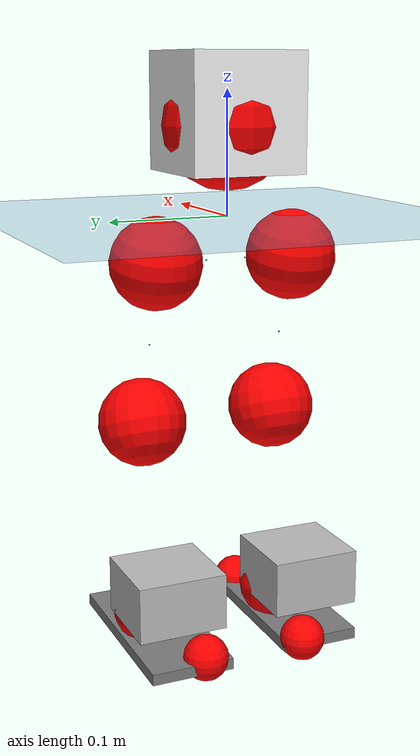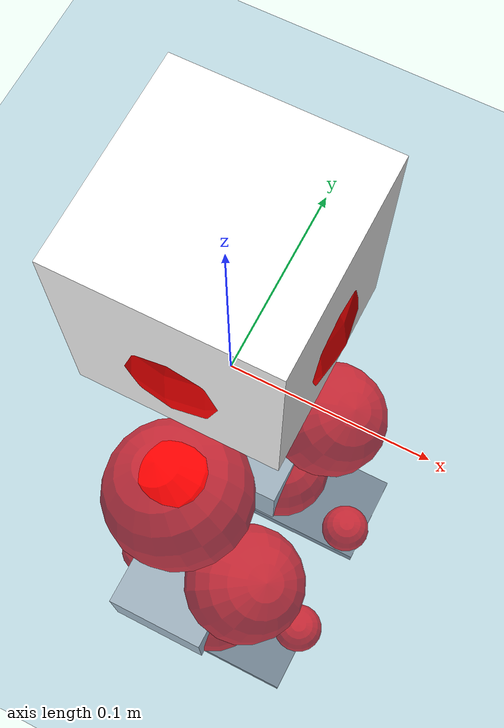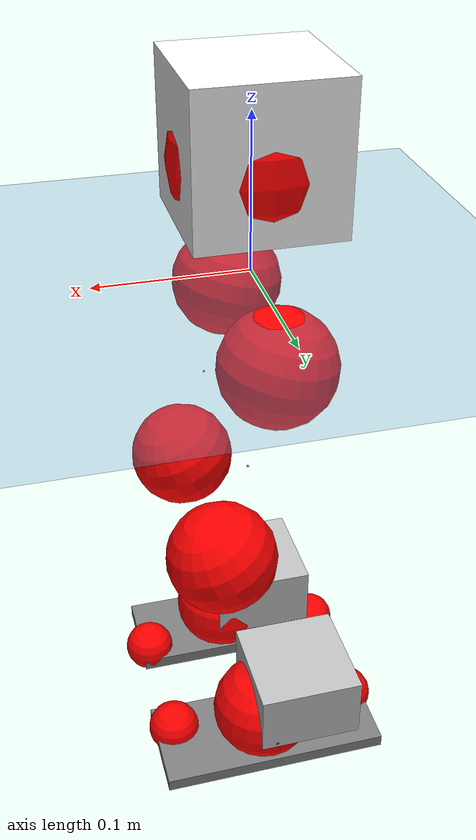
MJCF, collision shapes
<mujoco model="pi_12dof_release_v1">
  <compiler angle="radian" assetdir="assets" balanceinertia="true" inertiafromgeom="false"/>

  <option timestep="0.005" density="1.2" viscosity="2e-05"/>

  <size nkey="1"/>

  <visual>
    <quality shadowsize="8192"/>
    <map shadowclip="0.5"/>
  </visual>

  <default>
    <default class="/">
      <joint armature="0.01" damping="0.01" frictionloss="0.01"/>
      <geom contype="0" conaffinity="0" group="1" solref="-1000 -80"/>
      <site size="0.01 0.005 0.005" group="5"/>
      <general forcelimited="true" biastype="affine" gainprm="20" biasprm="0 -20 -0.5"/>
      <default class="foot">
        <geom size="0.0845 0.036 0.005" type="box" condim="6" group="4" priority="1" friction="0.9 0.2 0.2" solimp="0.015 1 0.005"/>
      </default>
      <default class="reward_collision_sphere">
        <geom group="5" rgba="1 0 0 1"/>
      </default>
    </default>
  </default>

  <asset>
    <texture type="skybox" colorspace="auto" name="//unnamed_texture_0" builtin="gradient" rgb1="0.95 0.95 0.95" rgb2="0.95 0.95 0.95" width="100" height="600"/>
    <texture type="2d" colorspace="auto" name="texplane" builtin="checker" rgb1="0.345 0.575 0.748" rgb2="0.345 0.575 0.748" markrgb="1 1 1" width="512" height="512"/>
    <material name="MatPlane" class="/" texture="texplane" texuniform="true" texrepeat="2 2" specular="0.9"/>
    <mesh name="baselink_1" class="/" file="baselink_1.STL"/>
    <mesh name="r_hip_pitch_link" class="/" file="r_hip_pitch_link.STL"/>
    <mesh name="r_hip_roll_link" class="/" file="r_hip_roll_link.STL"/>
    <mesh name="r_thigh_link" class="/" file="r_thigh_link.STL"/>
    <mesh name="r_calf_link" class="/" file="r_calf_link.STL"/>
    <mesh name="r_ankle_pitch_link" class="/" file="r_ankle_pitch_link.STL"/>
    <mesh name="r_ankle_roll_link" class="/" file="r_ankle_roll_link.STL"/>
    <mesh name="l_hip_pitch_link" class="/" file="l_hip_pitch_link.STL"/>
    <mesh name="l_hip_roll_link" class="/" file="l_hip_roll_link.STL"/>
    <mesh name="l_thigh_link" class="/" file="l_thigh_link.STL"/>
    <mesh name="l_calf_link" class="/" file="l_calf_link.STL"/>
    <mesh name="l_ankle_pitch_link" class="/" file="l_ankle_pitch_link.STL"/>
    <mesh name="l_ankle_roll_link" class="/" file="l_ankle_roll_link.STL"/>
  </asset>

  <worldbody>
    <geom name="floor" class="/" size="100 100 0.125" type="plane" group="0" material="MatPlane"/>
    <light name="toplight_shadow" class="/" pos="0 0 5" dir="0.0990148 0.0990148 -0.990148" type="directional" ambient="0.04 0.04 0.04" diffuse="0.55 0.55 0.55" specular="0.12 0.12 0.12"/>
    <light name="toplight_fill" class="/" pos="0 0 5" dir="0.0990148 0.0990148 -0.990148" type="directional" castshadow="false" ambient="0.04 0.04 0.04" diffuse="0.3 0.3 0.3" specular="0.08 0.08 0.08"/>
    <body name="trunk" pos="-0.000174241 0.000877669 -2.94145e-05" quat="1 9.13533e-05 3.2478e-05 0.000312506">
      <inertial pos="0.00186878 -0.000821731 0.0411861" quat="0.69544 0.00937288 0.00941209 0.718462" mass="1.77463" diaginertia="0.010209 0.00243576 0.00470227"/>
      <joint name="//unnamed_joint_0" type="free"/>
      <geom name="//unnamed_geom_1" class="/" type="mesh" density="0" rgba="1 1 1 1" mesh="baselink_1"/>
      <geom name="//unnamed_geom_2" class="/" size="0.0467859 0.0467859 0.0467859" pos="0 0 0.0820911" type="box" rgba="1 1 1 1"/>
      <geom name="//unnamed_geom_3" class="reward_collision_sphere" size="0.0514645" pos="0 0 0.0718297"/>
      <site name="imu" class="/" pos="0.000807082 0.000830837 -0.00239221" size="0.00935719"/>
      <camera name="track" class="/" pos="0 -1.5415 0" quat="0.707107 0.707107 0 0" mode="trackcom"/>
      <camera name="ego_camera" class="/" pos="0.07577 0 0.184705" quat="-0.5 -0.5 0.5 0.5"/>
      <body name="r_hip_pitch_link" pos="0.00065885 -0.0166025 -0.0343397" quat="0.992194 2.86064e-05 -0.124706 1.03671e-05">
        <inertial pos="0.000586884 -0.0424438 0.000384351" quat="-0.018777 0.706438 -0.028032 0.706971" mass="0.302028" diaginertia="0.000113516 2.65585e-05 9.32672e-05"/>
        <joint name="r_hip_pitch_joint" class="/" pos="0 0 0" axis="0.000919785 -0.999981 -0.00601744" range="-1.75065 1.25711" armature="0.00938038" damping="0.0121919" frictionloss="0.00895135"/>
        <geom name="//unnamed_geom_4" class="/" type="mesh" density="0" rgba="0.75294 0.75294 0.75294 1" mesh="r_hip_pitch_link"/>
        <geom name="//unnamed_geom_5" class="/" size="0.000467859 0.000467859 0.000467859" type="box" rgba="0.75294 0.75294 0.75294 1"/>
        <body name="r_hip_roll_link" pos="0.000534605 -0.0421037 -3.22418e-05" quat="1 9.42565e-06 -5.1991e-06 -1.83246e-05">
          <inertial pos="-0.000721808 -0.000483647 -0.0636589" quat="0.705802 -0.0791411 -0.0838715 0.698961" mass="0.315862" diaginertia="0.000352485 7.59898e-05 0.000145778"/>
          <joint name="r_hip_roll_joint" class="/" pos="0 0 0" axis="-1 -0.000408158 -0.000133935" range="-0.108414 0.488601" armature="0.00943466" damping="0.00914372" frictionloss="0.00940204"/>
          <geom name="//unnamed_geom_6" class="/" type="mesh" density="0" rgba="0.75294 0.75294 0.75294 1" mesh="r_hip_roll_link"/>
          <geom name="//unnamed_geom_7" class="/" size="0.000467859 0.000467859 0.000467859" type="box" rgba="0.75294 0.75294 0.75294 1"/>
          <geom name="//unnamed_geom_8" class="reward_collision_sphere" size="0.0374288"/>
          <body name="r_thigh_link" pos="-0.000254797 0.00107833 -0.0711795" quat="1 -9.21452e-05 7.88807e-05 -0.000470449">
            <inertial pos="-0.000313861 0.000582632 -0.0480366" quat="0.736952 0.675943 -0.00163664 0.000166449" mass="0.0928121" diaginertia="0.000130871 2.55596e-05 6.65785e-05"/>
            <joint name="r_thigh_joint" class="/" pos="0 0 0" axis="0.00458276 0.0031149 -0.999985" range="-0.301225 0.576102" armature="0.00951811" damping="0.0051544" frictionloss="0.00944647"/>
            <geom name="//unnamed_geom_9" class="/" type="mesh" density="0" rgba="0.75294 0.75294 0.75294 1" mesh="r_thigh_link"/>
            <geom name="//unnamed_geom_10" class="/" size="0.000467859 0.000467859 0.000467859" type="box" rgba="0.75294 0.75294 0.75294 1"/>
            <body name="r_calf_link" pos="-0.000118008 -0.00150102 -0.0721131" quat="0.947636 -7.77754e-05 0.319354 7.03857e-05">
              <inertial pos="-0.00112805 -0.000285771 -0.0716275" quat="0.999982 -0.00342312 0.000179298 0.00485324" mass="0.666775" diaginertia="0.00366191 0.000936384 0.000198503"/>
              <joint name="r_calf_joint" class="/" pos="0 0 0" axis="0.000812082 -0.999999 0.000711905" range="-1.64841 0.656063" armature="0.00965849" damping="0.00155319" frictionloss="0.00960251"/>
              <geom name="//unnamed_geom_11" class="/" type="mesh" density="0" rgba="0.75294 0.75294 0.75294 1" mesh="r_calf_link"/>
              <geom name="//unnamed_geom_12" class="/" size="0.000467859 0.000467859 0.000467859" type="box" rgba="0.75294 0.75294 0.75294 1"/>
              <geom name="//unnamed_geom_13" class="reward_collision_sphere" size="0.0374288"/>
              <body name="r_ankle_pitch_link" pos="0.0010527 -8.81474e-05 -0.144238" quat="0.980077 -4.45488e-05 -0.198618 -0.000104039">
                <inertial pos="0.00574994 0.0021925 -0.000678571" quat="0.00230719 0.707141 -0.00245539 0.707064" mass="0.142823" diaginertia="0.000322897 6.03516e-05 0.000137165"/>
                <joint name="r_ankle_pitch_joint" class="/" pos="0 0 0" axis="-0.00119335 -0.999993 0.00366516" range="-1.28473 0.486196" armature="0.00924597" damping="0.00765898" frictionloss="0.00977036"/>
                <geom name="//unnamed_geom_14" class="/" type="mesh" density="0" rgba="0.75294 0.75294 0.75294 1" mesh="r_ankle_pitch_link"/>
                <geom name="//unnamed_geom_15" class="/" size="0.036493 0.0374288 0.023393" type="box" rgba="0.75294 0.75294 0.75294 1"/>
                <body name="r_ankle_roll_link" pos="0.0761549 0.0021111 -0.000308219" quat="1 -2.28244e-05 -1.94671e-05 7.18417e-06">
                  <inertial pos="-0.025112 -3.83346e-05 -0.0154034" quat="0.559828 0.430687 0.434321 0.558987" mass="0.424282" diaginertia="0.00117482 0.000281387 0.000319648"/>
                  <joint name="r_ankle_roll_joint" class="/" pos="0 0 0" axis="-0.999983 -0.0055728 0.00143221" range="-0.144105 0.162651" armature="0.00954022" damping="0.00901497" frictionloss="0.00944471"/>
                  <geom name="//unnamed_geom_16" class="/" type="mesh" density="0" rgba="0.75294 0.75294 0.75294 1" mesh="r_ankle_roll_link"/>
                  <geom name="//unnamed_geom_17" class="/" type="mesh" rgba="0.75294 0.75294 0.75294 1" mesh="r_ankle_roll_link"/>
                  <geom name="right_foot" class="foot" size="0.0732998 0.0330378 0.00468935" pos="-0.0515236 0 -0.0451501"/>
                  <geom name="//unnamed_geom_19" class="reward_collision_sphere" size="0.0374288" pos="-0.0505133 0 -0.0205228"/>
                  <geom name="//unnamed_geom_20" class="reward_collision_sphere" size="0.0187144" pos="0.015154 0.015415 -0.0410456"/>
                  <geom name="//unnamed_geom_21" class="reward_collision_sphere" size="0.0187144" pos="-0.121232 0.015415 -0.0410456"/>
                  <site name="right_foot" class="foot" pos="-0.0515236 0 -0.0451501" size="0.00935719"/>
                </body>
              </body>
            </body>
          </body>
        </body>
      </body>
      <body name="l_hip_pitch_link" pos="-0.000728716 0.0180558 -0.0340959" quat="0.992217 7.38781e-05 -0.12452 0.000498179">
        <inertial pos="0.00105732 0.0409519 -0.000130954" quat="-0.0385972 0.705609 0.0295535 0.706932" mass="0.320658" diaginertia="0.000134836 2.82527e-05 0.000113748"/>
        <joint name="l_hip_pitch_joint" class="/" pos="0 0 0" axis="-0.000443587 1 0.000338093" stiffness="0.00194565" range="-1.26319 1.75331" armature="0.00899315" damping="0.00801165" frictionloss="0.00929735"/>
        <geom name="//unnamed_geom_22" class="/" type="mesh" density="0" rgba="0.75294 0.75294 0.75294 1" mesh="l_hip_pitch_link"/>
        <geom name="//unnamed_geom_23" class="/" size="0.000467859 0.000467859 0.000467859" type="box" rgba="0.75294 0.75294 0.75294 1"/>
        <body name="l_hip_roll_link" pos="0.000617715 0.0428322 -0.000531822" quat="1 -6.50661e-06 1.00124e-05 1.1799e-05">
          <inertial pos="-0.00154345 5.79304e-05 -0.0632553" quat="0.698986 -0.0765627 -0.0766997 0.706876" mass="0.320319" diaginertia="0.000352483 7.61615e-05 0.000146682"/>
          <joint name="l_hip_roll_joint" class="/" pos="0 0 0" axis="-0.999999 0.000572191 0.00143789" range="-0.5081 0.117289" armature="0.00896003" damping="0.000387966" frictionloss="0.00913138"/>
          <geom name="//unnamed_geom_24" class="/" type="mesh" density="0" rgba="0.75294 0.75294 0.75294 1" mesh="l_hip_roll_link"/>
          <geom name="//unnamed_geom_25" class="/" size="0.000467859 0.000467859 0.000467859" type="box" rgba="0.75294 0.75294 0.75294 1"/>
          <geom name="//unnamed_geom_26" class="reward_collision_sphere" size="0.0374288"/>
          <body name="l_thigh_link" pos="0.000444553 -0.00025276 -0.0716174" quat="1 0.000122318 2.34423e-05 2.87754e-05">
            <inertial pos="0.000318768 -0.00151274 -0.0497283" quat="0.6753 0.737543 0.000421636 -0.000351498" mass="0.0920095" diaginertia="0.000131611 2.57415e-05 6.59664e-05"/>
            <joint name="l_thigh_joint" class="/" pos="0 0 0" axis="0.000625283 0.00119252 -0.999999" range="-0.600842 0.294951" armature="0.00970047" damping="0.0033278" frictionloss="0.00938253"/>
            <geom name="//unnamed_geom_27" class="/" type="mesh" density="0" rgba="0.75294 0.75294 0.75294 1" mesh="l_thigh_link"/>
            <geom name="//unnamed_geom_28" class="/" size="0.000467859 0.000467859 0.000467859" type="box" rgba="0.75294 0.75294 0.75294 1"/>
            <body name="l_calf_link" pos="-0.000474488 0.000725479 -0.0727582" quat="0.947538 0.0001847 0.319644 -8.38781e-05">
              <inertial pos="0.000295709 0.00148476 -0.0719076" quat="0.999984 0.00262218 -0.000861979 0.00501463" mass="0.665475" diaginertia="0.0036609 0.000939252 0.000198108"/>
              <joint name="l_calf_joint" class="/" pos="0 0 0" axis="-0.000416361 0.999999 -0.00119013" range="-0.655393 1.65207" armature="0.00922437" damping="0.0088165" frictionloss="0.00947293"/>
              <geom name="//unnamed_geom_29" class="/" type="mesh" density="0" rgba="0.75294 0.75294 0.75294 1" mesh="l_calf_link"/>
              <geom name="//unnamed_geom_30" class="/" size="0.000467859 0.000467859 0.000467859" type="box" rgba="0.75294 0.75294 0.75294 1"/>
              <geom name="//unnamed_geom_31" class="reward_collision_sphere" size="0.0374288"/>
              <body name="l_ankle_pitch_link" pos="0.000146268 0.000596068 -0.142867" quat="0.980064 -7.70482e-05 -0.198683 3.2988e-05">
                <inertial pos="0.00487578 -0.000180596 0.00011775" quat="-0.00203305 0.706724 0.00173595 0.707484" mass="0.144669" diaginertia="0.000323685 6.03291e-05 0.000136419"/>
                <joint name="l_ankle_pitch_joint" class="/" pos="0 0 0" axis="0.000756229 0.999999 -0.000793264" range="-0.512759 1.30307" armature="0.00934556" damping="0.00805241" frictionloss="0.00928513"/>
                <geom name="//unnamed_geom_32" class="/" type="mesh" density="0" rgba="0.75294 0.75294 0.75294 1" mesh="l_ankle_pitch_link"/>
                <geom name="//unnamed_geom_33" class="/" size="0.036493 0.0374288 0.023393" type="box" rgba="0.75294 0.75294 0.75294 1"/>
                <body name="l_ankle_roll_link" pos="0.0756249 0.000210941 0.00031026" quat="1 2.60432e-05 -1.10758e-05 0.000141362">
                  <inertial pos="-0.0243462 -0.000322685 -0.0155156" quat="0.559886 0.43081 0.434156 0.558963" mass="0.425972" diaginertia="0.00117635 0.000282431 0.000317507"/>
                  <joint name="l_ankle_roll_joint" class="/" pos="0 0 0" axis="-0.999996 -0.00183971 -0.00205389" stiffness="0.00031932" range="-0.161632 0.152524" armature="0.00924226" damping="0.00438205" frictionloss="0.00958544"/>
                  <geom name="//unnamed_geom_34" class="/" type="mesh" density="0" rgba="0.75294 0.75294 0.75294 1" mesh="l_ankle_roll_link"/>
                  <geom name="//unnamed_geom_35" class="/" type="mesh" rgba="0.75294 0.75294 0.75294 1" mesh="l_ankle_roll_link"/>
                  <geom name="left_foot" class="foot" size="0.0810742 0.0346971 0.00465314" pos="-0.0515236 0 -0.0451501"/>
                  <geom name="//unnamed_geom_37" class="reward_collision_sphere" size="0.0374288" pos="-0.0505133 0 -0.0205228"/>
                  <geom name="//unnamed_geom_38" class="reward_collision_sphere" size="0.0187144" pos="0.015154 -0.015415 -0.0410456"/>
                  <geom name="//unnamed_geom_39" class="reward_collision_sphere" size="0.0187144" pos="-0.121232 -0.015415 -0.0410456"/>
                  <site name="left_foot" class="foot" pos="-0.0515236 0 -0.0451501" size="0.00935719"/>
                </body>
              </body>
            </body>
          </body>
        </body>
      </body>
    </body>
  </worldbody>

  <contact>
    <pair class="/" geom1="floor" geom2="right_foot" name="//unnamed_contact_1"/>
    <pair class="/" geom1="floor" geom2="left_foot" name="//unnamed_contact_0"/>
  </contact>

  <actuator>
    <general name="r_hip_pitch_joint" class="/" joint="r_hip_pitch_joint" forcerange="-19.3672 19.3672" gainprm="18.7925" biasprm="0 -18.7925 -0.474404"/>
    <general name="r_hip_roll_joint" class="/" joint="r_hip_roll_joint" forcerange="-19.6216 19.6216" gainprm="18.7925" biasprm="0 -18.7925 -0.474404"/>
    <general name="r_thigh_joint" class="/" joint="r_thigh_joint" forcerange="-19.7209 19.7209" gainprm="18.7925" biasprm="0 -18.7925 -0.474404"/>
    <general name="r_calf_joint" class="/" joint="r_calf_joint" forcerange="-19.4378 19.4378" gainprm="18.7925" biasprm="0 -18.7925 -0.474404"/>
    <general name="r_ankle_pitch_joint" class="/" joint="r_ankle_pitch_joint" forcerange="-19.8871 19.8871" gainprm="18.7925" biasprm="0 -18.7925 -0.474404"/>
    <general name="r_ankle_roll_joint" class="/" joint="r_ankle_roll_joint" forcerange="-19.39 19.39" gainprm="18.7925" biasprm="0 -18.7925 -0.474404"/>
    <general name="l_hip_pitch_joint" class="/" joint="l_hip_pitch_joint" forcerange="-19.6823 19.6823" gainprm="18.7925" biasprm="0 -18.7925 -0.474404"/>
    <general name="l_hip_roll_joint" class="/" joint="l_hip_roll_joint" forcerange="-20.0686 20.0686" gainprm="18.7925" biasprm="0 -18.7925 -0.474404"/>
    <general name="l_thigh_joint" class="/" joint="l_thigh_joint" forcerange="-19.607 19.607" gainprm="18.7925" biasprm="0 -18.7925 -0.474404"/>
    <general name="l_calf_joint" class="/" joint="l_calf_joint" forcerange="-20.0532 20.0532" gainprm="18.7925" biasprm="0 -18.7925 -0.474404"/>
    <general name="l_ankle_pitch_joint" class="/" joint="l_ankle_pitch_joint" forcerange="-19.6875 19.6875" gainprm="18.7925" biasprm="0 -18.7925 -0.474404"/>
    <general name="l_ankle_roll_joint" class="/" joint="l_ankle_roll_joint" forcerange="-20.2369 20.2369" gainprm="18.7925" biasprm="0 -18.7925 -0.474404"/>
  </actuator>

  <sensor>
    <gyro site="imu" name="imu_angular_velocity"/>
    <velocimeter site="imu" name="imu_linear_velocity"/>
    <framelinvel objtype="site" objname="left_foot" name="left_foot_global_linear_velocity"/>
    <framelinvel objtype="site" objname="right_foot" name="right_foot_global_linear_velocity"/>
  </sensor>

  <keyframe>
    <key name="home" qpos="0 0 0.291 1 0 0 0 0.4 0 0 -0.8 0.4 0 -0.4 0 0 0.8 -0.4 0"/>
  </keyframe>
</mujoco>
